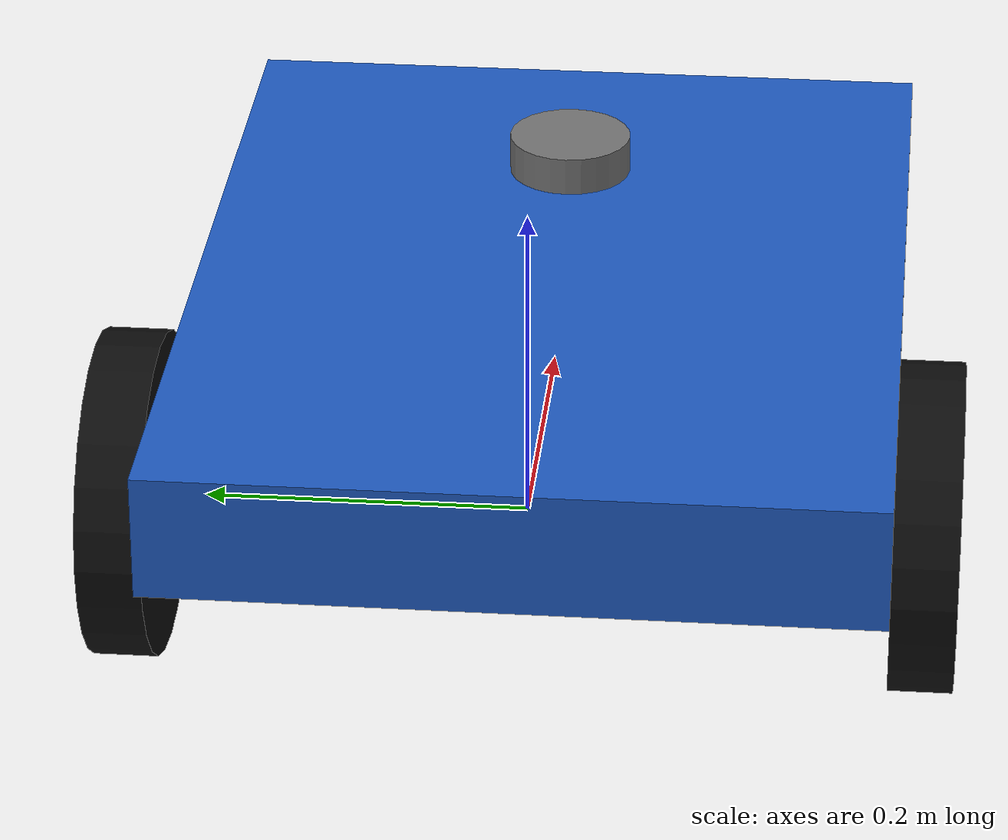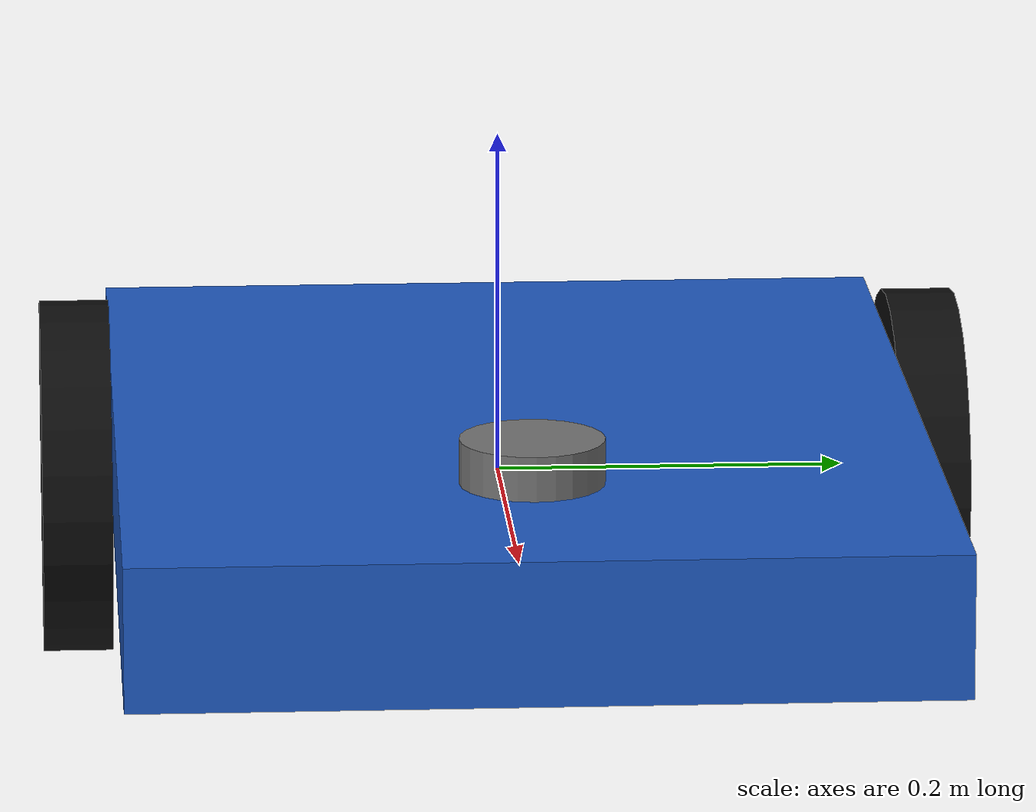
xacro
<?xml version="1.0"?>
<robot xmlns:xacro="http://www.ros.org/wiki/xacro" name="pathfinder">
  <xacro:property name="base_length" value="0.604"/>
  <xacro:property name="base_width" value="0.451"/>
  <xacro:property name="base_height" value="0.08"/>
  <xacro:property name="base_link_from_rear" value="0.127"/>

  <xacro:property name="wheel_radius" value="0.1016"/>
  <xacro:property name="wheel_width" value="0.04"/>
  <xacro:property
    name="wheel_separation"
    value="${base_width + wheel_width}"
  />

  <xacro:property name="imu_x" value="0.195"/>
  <xacro:property name="imu_y" value="0.0"/>
  <xacro:property name="imu_z" value="0.0"/>

  <!-- TODO: confirm lidar transform values after statically mounting it -->
  <xacro:property name="laser_x" value="0.32"/>
  <xacro:property name="laser_y" value="0.0"/>
  <xacro:property name="laser_z" value="0.065"/>
  <xacro:property name="laser_yaw" value="3.141592653589793"/>

  <material name="pathfinder_blue">
    <color rgba="0.12 0.35 0.75 1.0"/>
  </material>
  <material name="wheel_black">
    <color rgba="0.05 0.05 0.05 1.0"/>
  </material>
  <material name="sensor_gray">
    <color rgba="0.45 0.45 0.45 1.0"/>
  </material>

  <!-- base_link is between the wheels -->
  <link name="base_link">
    <visual>
      <origin
        xyz="${base_length / 2.0 - base_link_from_rear} 0 ${base_height / 2.0}"
        rpy="0 0 0"
      />
      <geometry>
        <box size="${base_length} ${base_width} ${base_height}"/>
      </geometry>
      <material name="pathfinder_blue"/>
    </visual>
    <collision>
      <origin
        xyz="${base_length / 2.0 - base_link_from_rear} 0 ${base_height / 2.0}"
        rpy="0 0 0"
      />
      <geometry>
        <box size="${base_length} ${base_width} ${base_height}"/>
      </geometry>
    </collision>
  </link>

  <link name="left_wheel_link">
    <visual>
      <origin xyz="0 0 0" rpy="1.5707963267948966 0 0"/>
      <geometry>
        <cylinder radius="${wheel_radius}" length="${wheel_width}"/>
      </geometry>
      <material name="wheel_black"/>
    </visual>
    <collision>
      <origin xyz="0 0 0" rpy="1.5707963267948966 0 0"/>
      <geometry>
        <cylinder radius="${wheel_radius}" length="${wheel_width}"/>
      </geometry>
    </collision>
  </link>

  <joint name="left_wheel_joint" type="continuous">
    <parent link="base_link"/>
    <child link="left_wheel_link"/>
    <origin xyz="0 ${wheel_separation / 2.0} 0" rpy="0 0 0"/>
    <axis xyz="0 1 0"/>
  </joint>

  <link name="right_wheel_link">
    <visual>
      <origin xyz="0 0 0" rpy="1.5707963267948966 0 0"/>
      <geometry>
        <cylinder radius="${wheel_radius}" length="${wheel_width}"/>
      </geometry>
      <material name="wheel_black"/>
    </visual>
    <collision>
      <origin xyz="0 0 0" rpy="1.5707963267948966 0 0"/>
      <geometry>
        <cylinder radius="${wheel_radius}" length="${wheel_width}"/>
      </geometry>
    </collision>
  </link>

  <joint name="right_wheel_joint" type="continuous">
    <parent link="base_link"/>
    <child link="right_wheel_link"/>
    <origin xyz="0 ${-wheel_separation / 2.0} 0" rpy="0 0 0"/>
    <axis xyz="0 1 0"/>
  </joint>

  <link name="imu_link">
    <visual>
      <geometry>
        <box size="0.035 0.025 0.01"/>
      </geometry>
      <material name="sensor_gray"/>
    </visual>
  </link>

  <joint name="imu_joint" type="fixed">
    <parent link="base_link"/>
    <child link="imu_link"/>
    <origin xyz="${imu_x} ${imu_y} ${imu_z}" rpy="0 0 0"/>
  </joint>

  <link name="laser">
    <visual>
      <origin xyz="0 0 0.02" rpy="0 0 0"/>
      <geometry>
        <cylinder radius="0.04" length="0.04"/>
      </geometry>
      <material name="sensor_gray"/>
    </visual>
  </link>

  <joint name="laser_joint" type="fixed">
    <parent link="base_link"/>
    <child link="laser"/>
    <origin
      xyz="${laser_x} ${laser_y} ${laser_z}"
      rpy="0 0 ${laser_yaw}"
    />
  </joint>
</robot>
